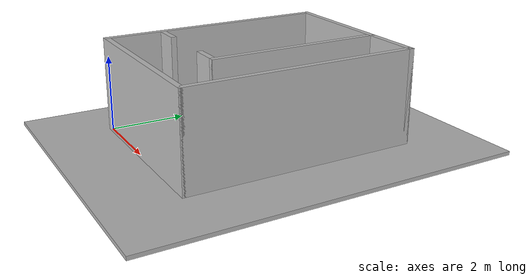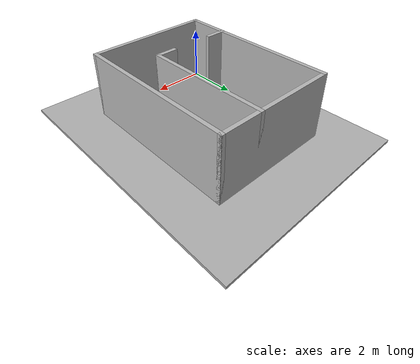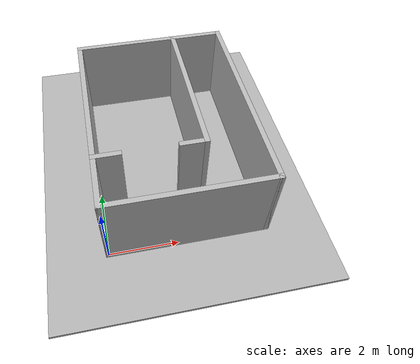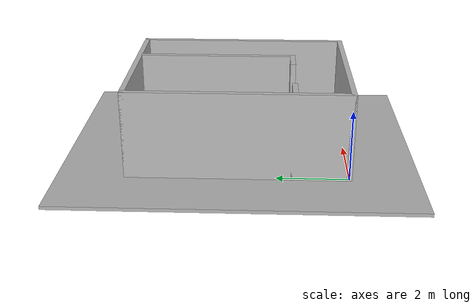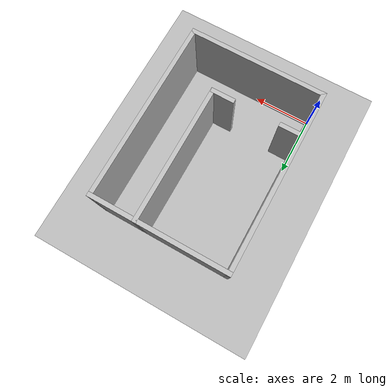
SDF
<?xml version="1.0" ?>
<sdf version="1.9">
  <world name="reactive_room">

    <!-- Physics -->
    <physics name="1ms" type="ignored">
      <max_step_size>0.001</max_step_size>
      <real_time_factor>1.0</real_time_factor>
    </physics>

    <!-- Gazebo systems -->
    <plugin
      filename="gz-sim-physics-system"
      name="gz::sim::systems::Physics">
    </plugin>

    <plugin
      filename="gz-sim-user-commands-system"
      name="gz::sim::systems::UserCommands">
    </plugin>

    <plugin
      filename="gz-sim-scene-broadcaster-system"
      name="gz::sim::systems::SceneBroadcaster">
    </plugin>

    <plugin
      filename="gz-sim-contact-system"
      name="gz::sim::systems::Contact">
    </plugin>

    <!-- Sun -->
    <light type="directional" name="sun">
      <cast_shadows>true</cast_shadows>
      <pose>0 0 10 0 0 0</pose>
      <diffuse>0.8 0.8 0.8 1</diffuse>
      <specular>0.2 0.2 0.2 1</specular>
      <direction>-0.5 0.1 -0.9</direction>
    </light>

    <!-- Large floor -->
    <model name="floor">
      <static>true</static>
      <pose>2.286 3.048 -0.05 0 0 0</pose>

      <link name="floor_link">
        <collision name="floor_collision">
          <geometry>
            <box>
              <size>8 10 0.1</size>
            </box>
          </geometry>
        </collision>

        <visual name="floor_visual">
          <geometry>
            <box>
              <size>8 10 0.1</size>
            </box>
          </geometry>

          <material>
            <ambient>0.7 0.7 0.7 1</ambient>
            <diffuse>0.7 0.7 0.7 1</diffuse>
          </material>
        </visual>
      </link>
    </model>

    <!-- Top wall -->
    <model name="north_wall">
      <static>true</static>
      <pose>2.286 6.096 1.25 0 0 0</pose>

      <link name="wall_link">
        <collision name="collision">
          <geometry>
            <box>
              <size>4.722 0.15 2.5</size>
            </box>
          </geometry>
        </collision>

        <visual name="visual">
          <geometry>
            <box>
              <size>4.722 0.15 2.5</size>
            </box>
          </geometry>
        </visual>
      </link>
    </model>

    <!-- Bottom hallway wall -->
    <model name="south_wall">
      <static>true</static>
      <pose>2.286 0 1.25 0 0 0</pose>

      <link name="wall_link">
        <collision name="collision">
          <geometry>
            <box>
              <size>4.722 0.15 2.5</size>
            </box>
          </geometry>
        </collision>

        <visual name="visual">
          <geometry>
            <box>
              <size>4.722 0.15 2.5</size>
            </box>
          </geometry>
        </visual>
      </link>
    </model>

    <!-- Left outside wall -->
    <model name="west_wall">
      <static>true</static>
      <pose>0 3.048 1.25 0 0 0</pose>

      <link name="wall_link">
        <collision name="collision">
          <geometry>
            <box>
              <size>0.15 6.246 2.5</size>
            </box>
          </geometry>
        </collision>

        <visual name="visual">
          <geometry>
            <box>
              <size>0.15 6.246 2.5</size>
            </box>
          </geometry>
        </visual>
      </link>
    </model>

    <!-- Right outside wall -->
    <model name="east_wall">
      <static>true</static>
      <pose>4.572 3.048 1.25 0 0 0</pose>

      <link name="wall_link">
        <collision name="collision">
          <geometry>
            <box>
              <size>0.15 6.246 2.5</size>
            </box>
          </geometry>
        </collision>

        <visual name="visual">
          <geometry>
            <box>
              <size>0.15 6.246 2.5</size>
            </box>
          </geometry>
        </visual>
      </link>
    </model>

    <!-- Wall separating room from long hallway -->
    <model name="room_east_wall">
      <static>true</static>
      <pose>3.048 3.810 1.25 0 0 0</pose>

      <link name="wall_link">
        <collision name="collision">
          <geometry>
            <box>
              <size>0.15 4.722 2.5</size>
            </box>
          </geometry>
        </collision>

        <visual name="visual">
          <geometry>
            <box>
              <size>0.15 4.722 2.5</size>
            </box>
          </geometry>
        </visual>
      </link>
    </model>

    <!-- Left side of room doorway -->
    <model name="room_south_wall_west">
      <static>true</static>
      <pose>0.3435 1.524 1.25 0 0 0</pose>

      <link name="wall_link">
        <collision name="collision">
          <geometry>
            <box>
              <size>0.837 0.15 2.5</size>
            </box>
          </geometry>
        </collision>

        <visual name="visual">
          <geometry>
            <box>
              <size>0.837 0.15 2.5</size>
            </box>
          </geometry>
        </visual>
      </link>
    </model>

    <!-- Right side of room doorway -->
    <model name="room_south_wall_east">
      <static>true</static>
      <pose>2.7045 1.524 1.25 0 0 0</pose>

      <link name="wall_link">
        <collision name="collision">
          <geometry>
            <box>
              <size>0.837 0.15 2.5</size>
            </box>
          </geometry>
        </collision>

        <visual name="visual">
          <geometry>
            <box>
              <size>0.837 0.15 2.5</size>
            </box>
          </geometry>
        </visual>
      </link>
    </model>

  </world>
</sdf>
